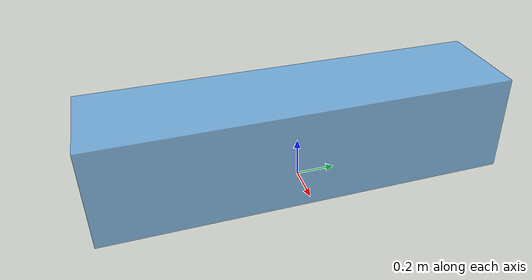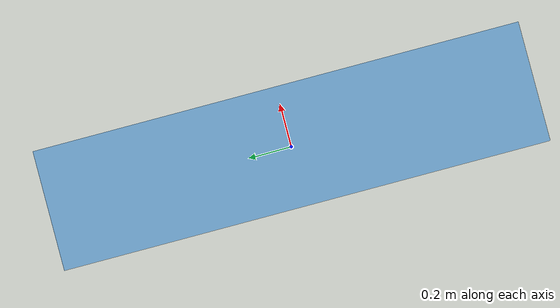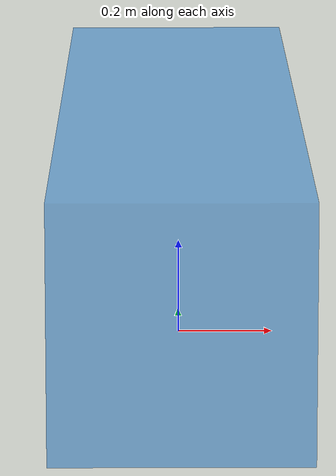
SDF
<?xml version="1.0" ?>
<sdf version="1.6">
  <model name="pedestrian_scan_box">
    <static>false</static>
    <allow_auto_disable>false</allow_auto_disable>
    <pose>0 0 0.25 0 0 0</pose>
    <link name="link">
      <kinematic>true</kinematic>
      <gravity>false</gravity>
      <inertial>
        <mass>1.0</mass>
        <inertia>
          <ixx>0.1</ixx>
          <iyy>0.1</iyy>
          <izz>0.1</izz>
        </inertia>
      </inertial>
      <collision name="collision">
        <geometry>
          <box>
            <size>0.5 2.04 0.5</size>
          </box>
        </geometry>
      </collision>
      <visual name="visual">
        <geometry>
          <box>
            <size>0.5 2.04 0.5</size>
          </box>
        </geometry>
        <transparency>0.35</transparency>
        <material>
          <ambient>0.28 0.60 0.88 1</ambient>
          <diffuse>0.28 0.60 0.88 1</diffuse>
        </material>
      </visual>
    </link>
  </model>
</sdf>
